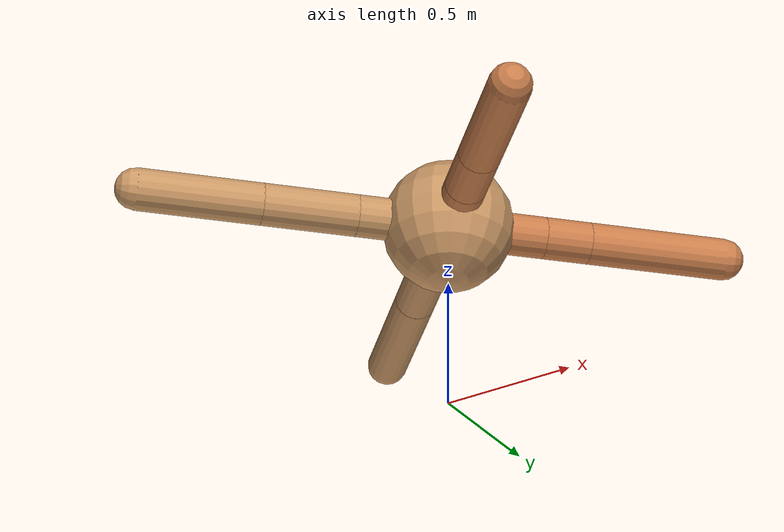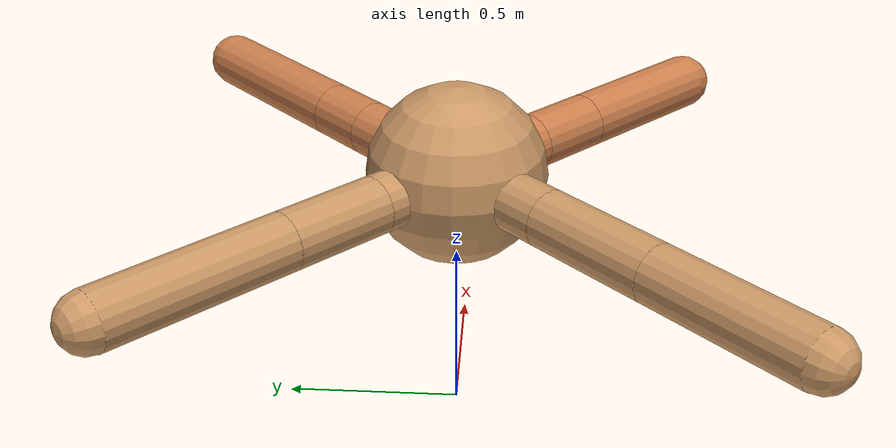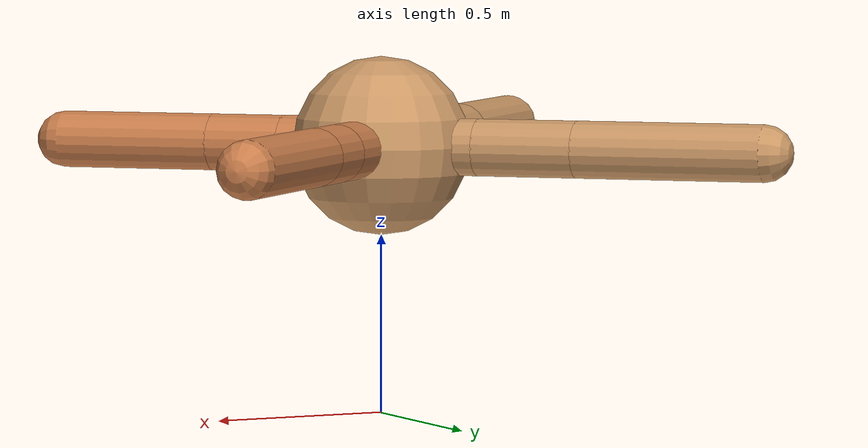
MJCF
<mujoco model="ant">
  <compiler angle="degree" coordinate="local" inertiafromgeom="true" />
  <option integrator="RK4" timestep="0.01" />
  <custom>
    <numeric data="0.0 0.0 0.55 1.0 0.0 0.0 0.0 0.0 1.0 0.0 -1.0 0.0 -1.0 0.0 1.0" name="init_qpos" />
  </custom>
  <default>
    <joint armature="1" damping="1" limited="true" />
    <geom conaffinity="0" condim="3" density="5.0" friction="1.5 0.1 0.1" margin="0.01" rgba="0.8 0.6 0.4 1" />
  </default>
  <worldbody>
    <body name="torso" pos="0 0 0.75">
      <geom name="torso_geom" pos="0 0 0" size="0.25" type="sphere" />

      <body name="front_left_leg" pos="0 0 0">
        <geom fromto="0.0 0.0 0.0 0.2613640579511474 0.2613640579511474 0.0" name="aux_1_geom" size="0.08" type="capsule" rgba=".8 .5 .3 1" />
        <body name="aux_1" pos="0.2613640579511474 0.2613640579511474 0.0">
          <joint axis="0 0 1" name="hip_1" pos="0.0 0.0 0.0" range="-40 40" type="hinge" />
          <geom fromto="0.0 0.0 0.0 0.1236510018013429 0.1236510018013429 0.0" name="left_leg_geom" size="0.08" type="capsule" rgba=".8 .5 .3 1" />
          <body pos="0.1236510018013429 0.1236510018013429 0.0" name="front_left_foot">
            <joint axis="-1 1 0" name="ankle_1" pos="0.0 0.0 0.0" range="30 100" type="hinge" />
            <geom fromto="0.0 0.0 0.0 0.37807611468775826 0.37807611468775826 0.0" name="left_ankle_geom" size="0.08" type="capsule" rgba=".8 .5 .3 1" />
          </body>
        </body>
      </body>
      <body name="front_right_leg" pos="0 0 0">
        <geom fromto="0.0 0.0 0.0 -0.2013161563123448 0.2013161563123448 0.0" name="aux_2_geom" size="0.08" type="capsule" />
        <body name="aux_2" pos="-0.2013161563123448 0.2013161563123448 0.0">
          <joint axis="0 0 1" name="hip_2" pos="0.0 0.0 0.0" range="-40 40" type="hinge" />
          <geom fromto="0.0 0.0 0.0 -0.20207584465538259 0.20207584465538259 0.0" name="right_leg_geom" size="0.08" type="capsule" />
          <body pos="-0.20207584465538259 0.20207584465538259 0.0" name="front_right_foot">
            <joint axis="1 1 0" name="ankle_2" pos="0.0 0.0 0.0" range="-100 -30" type="hinge" />
            <geom fromto="0.0 0.0 0.0 -0.37887770398833426 0.37887770398833426 0.0" name="right_ankle_geom" size="0.08" type="capsule" />
          </body>
        </body>
      </body>
      <body name="left_back_leg" pos="0 0 0">
        <geom fromto="0.0 0.0 0.0 -0.24731211467884082 -0.24731211467884082 0.0" name="aux_3_geom" size="0.08" type="capsule" />
        <body name="aux_3" pos="-0.24731211467884082 -0.24731211467884082 0.0">
          <joint axis="0 0 1" name="hip_3" pos="0.0 0.0 0.0" range="-40 40" type="hinge" />
          <geom fromto="0.0 0.0 0.0 -0.25275271314284903 -0.25275271314284903 0.0" name="back_leg_geom" size="0.08" type="capsule" />
          <body pos="-0.25275271314284903 -0.25275271314284903 0.0" name="left_back_foot">
            <joint axis="-1 1 0" name="ankle_3" pos="0.0 0.0 0.0" range="-100 -30" type="hinge" />
            <geom fromto="0.0 0.0 0.0 -0.33147883040027537 -0.33147883040027537 0.0" name="third_ankle_geom" size="0.08" type="capsule" />
          </body>
        </body>
      </body>
      <body name="right_back_leg" pos="0 0 0">
        <geom fromto="0.0 0.0 0.0 0.20388140743775512 -0.20388140743775512 0.0" name="aux_4_geom" size="0.08" type="capsule" rgba=".8 .5 .3 1" />
        <body name="aux_4" pos="0.20388140743775512 -0.20388140743775512 0.0">
          <joint axis="0 0 1" name="hip_4" pos="0.0 0.0 0.0" range="-40 40" type="hinge" />
          <geom fromto="0.0 0.0 0.0 0.14932483922720605 -0.14932483922720605 0.0" name="rightback_leg_geom" size="0.08" type="capsule" rgba=".8 .5 .3 1" />
          <body pos="0.14932483922720605 -0.14932483922720605 0.0" name="right_back_foot">
            <joint axis="1 1 0" name="ankle_4" pos="0.0 0.0 0.0" range="30 100" type="hinge" />
            <geom fromto="0.0 0.0 0.0 0.3181047593558918 -0.3181047593558918 0.0" name="fourth_ankle_geom" size="0.08" type="capsule" rgba=".8 .5 .3 1" />
          </body>
        </body>
      </body>
    </body>
  </worldbody>
  <actuator>
    <motor ctrllimited="true" ctrlrange="-1.0 1.0" joint="hip_4" gear="150" />
    <motor ctrllimited="true" ctrlrange="-1.0 1.0" joint="ankle_4" gear="150" />
    <motor ctrllimited="true" ctrlrange="-1.0 1.0" joint="hip_1" gear="150" />
    <motor ctrllimited="true" ctrlrange="-1.0 1.0" joint="ankle_1" gear="150" />
    <motor ctrllimited="true" ctrlrange="-1.0 1.0" joint="hip_2" gear="150" />
    <motor ctrllimited="true" ctrlrange="-1.0 1.0" joint="ankle_2" gear="150" />
    <motor ctrllimited="true" ctrlrange="-1.0 1.0" joint="hip_3" gear="150" />
    <motor ctrllimited="true" ctrlrange="-1.0 1.0" joint="ankle_3" gear="150" />
  </actuator>
</mujoco>
